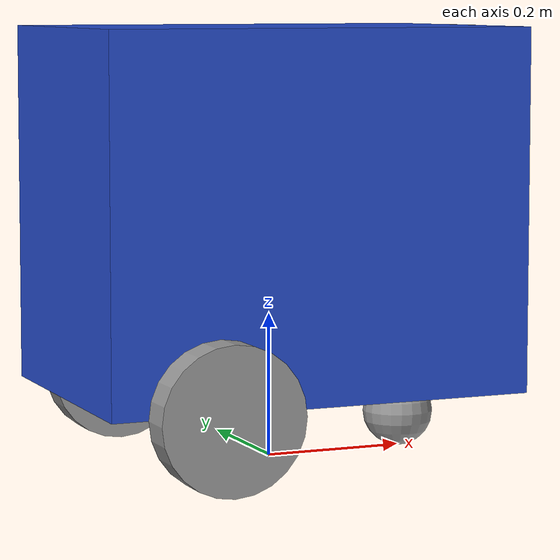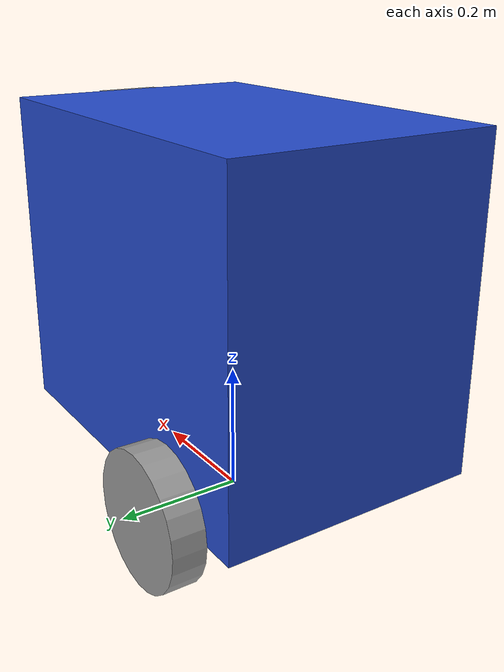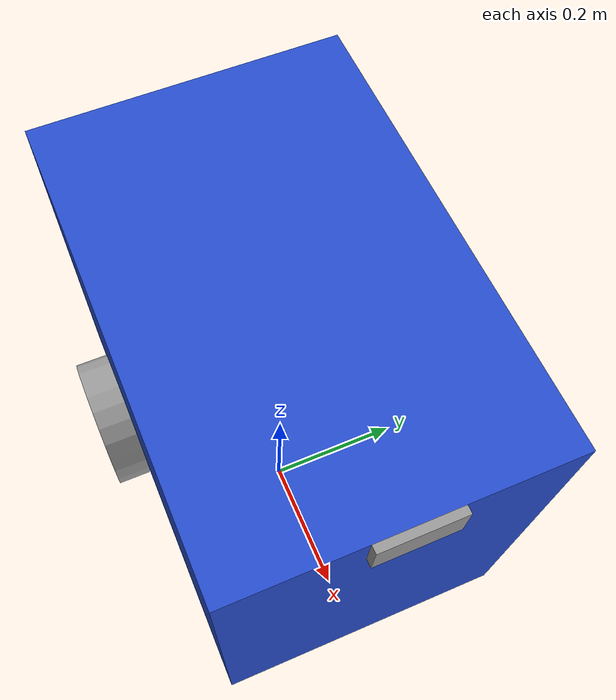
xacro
<?xml version="1.0"?>
<robot name="my_robot" xmlns:xacro="http://www.ros.org/wiki/xacro">

    <xacro:include filename="commom_properties.urdf.xacro" />
    <xacro:include filename="mobile_base.urdf.xacro" />
    <xacro:include filename="base_gazebo.urdf.xacro" />
    <xacro:include filename="camera.urdf.xacro" />
    <xacro:include filename="lidar.urdf.xacro" />

</robot>

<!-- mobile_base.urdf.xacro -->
<robot xmlns:xacro="http://www.ros.org/wiki/xacro">

    <xacro:property name="base_length" value="0.6" />
    <xacro:property name="base_width" value="0.4" />
    <xacro:property name="base_height" value="0.5" />
    <xacro:property name="wheel_radius" value="0.1" />
    <xacro:property name="wheel_length" value="0.05" />

    <link name="base_footprint" />

    <link name="base_link">
        <visual>
            <geometry>
                <box size="${base_length} ${base_width} ${base_height}" />
            </geometry>
            <origin xyz="0 0 ${base_height / 2.0}" rpy="0 0 0" />
            <material name="blue" />
        </visual>
        <collision>
            <geometry>
                <box size="${base_length} ${base_width} ${base_height}" />
            </geometry>
            <origin xyz="0 0 ${base_height / 2.0}" rpy="0 0 0" />
        </collision>
        <xacro:box_inertia m="5.0" x="${base_length}" y="${base_width}" z="${base_height}"
                           o_xyz="0 0 ${base_height / 2.0}" o_rpy="0 0 0" />
    </link>

    <xacro:macro name="wheel_link" params="prefix">
        <link name="${prefix}_wheel_link">
            <visual>
                <geometry>
                    <cylinder radius="${wheel_radius}" length="${wheel_length}" />
                </geometry>
                <origin xyz="0 0 0" rpy="${pi / 2.0} 0 0" />
                <material name="grey" />
            </visual>
            <collision>
                <geometry>
                    <sphere radius="${wheel_radius}" />
                </geometry>
                <origin xyz="0 0 0" rpy="0 0 0" />
            </collision>
            <xacro:cylinder_inertia m="1.0" r="${wheel_radius}" l="${wheel_length}"
                                    o_xyz="0 0 0" o_rpy="${pi / 2.0} 0 0" />
        </link>
    </xacro:macro>

    <xacro:wheel_link prefix="right" />
    <xacro:wheel_link prefix="left" />

    <link name="caster_wheel_link">
        <visual>
            <geometry>
                <sphere radius="${wheel_radius / 2.0}" />
            </geometry>
            <origin xyz="0 0 0" rpy="0 0 0" />
            <material name="grey" />
        </visual>
        <collision>
            <geometry>
                <sphere radius="${wheel_radius / 2.0}" />
            </geometry>
            <origin xyz="0 0 0" rpy="0 0 0" />
        </collision>
        <xacro:sphere_inertia m="0.5" r="${wheel_radius / 2.0}"
                              o_xyz="0 0 0" o_rpy="0 0 0" />
    </link>

    <joint name="base_joint" type="fixed">
        <parent link="base_footprint" />
        <child link="base_link" />
        <origin xyz="0 0 ${wheel_radius}" rpy="0 0 0"/>
    </joint>

    <joint name="base_right_wheel_joint" type="continuous">
        <parent link="base_link" />
        <child link="right_wheel_link" />
        <origin xyz="${-base_length / 4.0} ${-(base_width + wheel_length) / 2.0} 0" rpy="0 0 0" />
        <axis xyz="0 1 0" />
    </joint>

    <joint name="base_left_wheel_joint" type="continuous">
        <parent link="base_link" />
        <child link="left_wheel_link" />
        <origin xyz="${-base_length / 4.0} ${(base_width + wheel_length) / 2.0} 0" rpy="0 0 0" />
        <axis xyz="0 1 0" />
    </joint>

    <joint name="base_caster_wheel_joint" type="fixed">
        <parent link="base_link" />
        <child link="caster_wheel_link" />
        <origin xyz="${base_length / 3.0} 0 ${-wheel_radius / 2.0}" rpy="0 0 0" />
    </joint>

</robot>

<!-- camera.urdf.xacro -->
<robot xmlns:xacro="http://www.ros.org/wiki/xacro">

    <xacro:property name="camera_length" value="0.01" />
    <xacro:property name="camera_width" value="0.1" />
    <xacro:property name="camera_height" value="0.05" />

    <link name="camera_link">
        <visual>
            <geometry>
                <box size="${camera_length} ${camera_width} ${camera_height}" />
            </geometry>
            <material name="grey" />
        </visual>
        <collision>
            <geometry>
                <box size="${camera_length} ${camera_width} ${camera_height}" />
            </geometry>
        </collision>
        <xacro:box_inertia m="0.1" x="${camera_length}" y="${camera_width}" z="${camera_height}"
                           o_xyz="0 0 0" o_rpy="0 0 0" />
    </link>

    <joint name="base_camera_joint" type="fixed">
        <parent link="base_link" />
        <child link="camera_link" />
        <origin xyz="${(base_length + camera_length) / 2.0} 0.01 ${base_height-0.025}" rpy="0 0 0" />
    </joint>

    <link name="camera_link_optical" />

    <joint name="camera_optical_joint" type="fixed">
        <origin xyz="0 0 0" rpy="${-pi/2} 0 ${-pi/2}"/>
        <parent link="camera_link"/>
        <child link="camera_link_optical"/>
    </joint>

    <gazebo reference="camera_link">
    <sensor name="camera" type="camera">
        <camera>
            <horizontal_fov>1.3962634</horizontal_fov>
            <image>
                <width>640</width>
                <height>480</height>
                <format>R8G8B8</format>
            </image>
            <clip>
                <near>0.1</near>
                <far>15</far>
            </clip>
            <noise>
                <type>gaussian</type>
                <mean>0.0</mean>
                <stddev>0.007</stddev>
            </noise>
            <optical_frame_id>camera_link_optical</optical_frame_id>
            <camera_info_topic>camera/camera_info</camera_info_topic>
        </camera>
        <always_on>1</always_on>
        <update_rate>20</update_rate>
        <visualize>true</visualize>
        <topic>/camera/image_raw</topic>
    </sensor>
</gazebo>

<!-- ADD THIS BLOCK RIGHT HERE -->
<gazebo>
  <plugin filename="gz-sim-sensors-system"
          name="gz::sim::systems::Sensors">
    <render_engine>ogre2</render_engine>
  </plugin>
</gazebo>

</robot>

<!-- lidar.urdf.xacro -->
<robot xmlns:xacro="http://www.ros.org/wiki/xacro">

  <xacro:property name="lidar_height" value="0.35"/>

  <joint name="laser_joint" type="fixed">
    <parent link="base_link"/>
    <child link="laser_frame"/>
    <origin xyz="0 0 ${lidar_height}" rpy="0 0 0"/>
  </joint>

  <link name="laser_frame">
    <visual>
      <geometry>
        <cylinder radius="0.05" length="0.04"/>
      </geometry>
      <material name="gray"/>
    </visual>
    <collision>
      <geometry>
        <cylinder radius="0.05" length="0.04"/>
      </geometry>
    </collision>
    <inertial>
      <mass value="0.1"/>
      <origin xyz="0 0 0" rpy="0 0 0"/>
      <inertia ixx="0.001" iyy="0.001" izz="0.001" ixy="0" ixz="0" iyz="0"/>
    </inertial>
  </link>

  <gazebo reference="laser_frame">
    <sensor name="lidar_sensor" type="ray">
      <pose>0 0 0 0 0 0</pose>
      <visualize>true</visualize>
      <update_rate>10.0</update_rate>
      <ray>
        <scan>
          <horizontal>
            <samples>360</samples>
            <resolution>1</resolution>
            <min_angle>-3.14159</min_angle>
            <max_angle>3.14159</max_angle>
          </horizontal>
        </scan>
        <range>
          <min>0.1</min>
          <max>12.0</max>
          <resolution>0.01</resolution>
        </range>
      </ray>

      <plugin name="lidar_plugin" filename="libgazebo_ros_ray_sensor.so">
        <ros>
          <remapping>~/out:=scan</remapping>
        </ros>
        <output_type>sensor_msgs/LaserScan</output_type>
        <frame_name>laser_frame</frame_name>
      </plugin>
    </sensor>
  </gazebo>

</robot>
